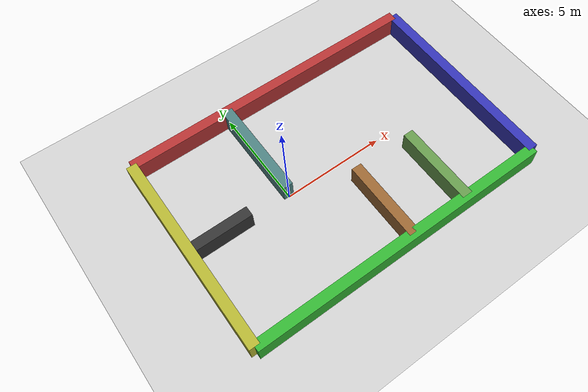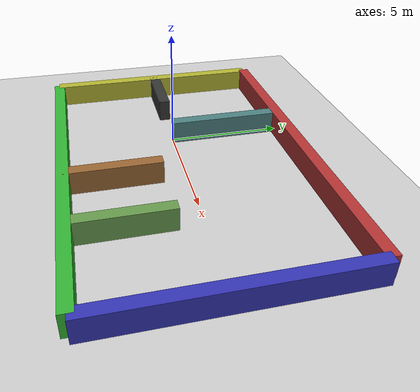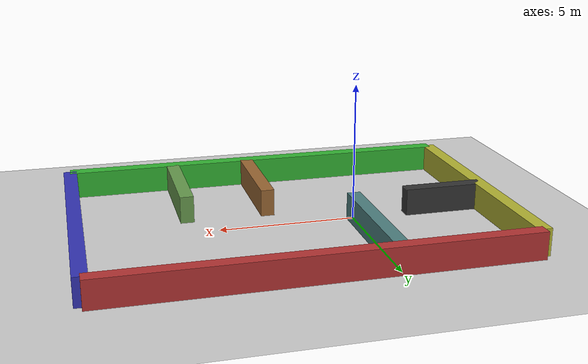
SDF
<?xml version="1.0" ?>
<sdf version="1.8">
  <world name="cwmaze">
    <scene>
      <grid>false</grid>
    </scene>
    <physics name="10ms" type="ignored">
      <max_step_size>0.01</max_step_size>
      <real_time_factor>1.0</real_time_factor>
      <dart>
        <collision_detector>bullet</collision_detector>
      </dart>
    </physics>

    <plugin
      filename="ignition-gazebo-physics-system"
      name="ignition::gazebo::systems::Physics">
    </plugin>
    <plugin
      filename="ignition-gazebo-sensors-system"
      name="ignition::gazebo::systems::Sensors">
      <render_engine>ogre2</render_engine>
    </plugin>
    <plugin
      filename="ignition-gazebo-scene-broadcaster-system"
      name="ignition::gazebo::systems::SceneBroadcaster">
    </plugin>
    <plugin
      filename="ignition-gazebo-user-commands-system"
      name="ignition::gazebo::systems::UserCommands">
    </plugin>

    <!-- imu plugin -->
    <plugin
      filename="libignition-gazebo-imu-system.so"
      name="ignition::gazebo::systems::Imu">
    </plugin>

    <light name="sun" type="directional">
      <cast_shadows>true</cast_shadows>
      <pose>0 0 10 0 0 0</pose>
      <diffuse>0.8 0.8 0.8 1</diffuse>
      <specular>0.2 0.2 0.2 1</specular>
      <attenuation>
        <range>1000</range>
        <constant>0.9</constant>
        <linear>0.01</linear>
        <quadratic>0.001</quadratic>
      </attenuation>
      <direction>-0.5 0.1 -0.9</direction>
    </light>

    <model name='ground_plane'>
      <static>true</static>
      <link name='link'>
        <collision name='collision'>
          <geometry>
            <plane>
              <normal>0 0 1</normal>
              <size>100 100</size>
            </plane>
          </geometry>
        </collision>
        <visual name='visual'>
          <geometry>
            <plane>
              <normal>0 0 1</normal>
              <size>100 100</size>
            </plane>
          </geometry>
          <material>
            <ambient>0.8 0.8 0.8 1</ambient>
            <diffuse>0.8 0.8 0.8 1</diffuse>
            <specular>0.8 0.8 0.8 1</specular>
          </material>
        </visual>
      </link>
      <pose>0 0 0 0 0 0</pose>
    </model>

    <!-- Maze Model -->
    <model name="maze">
      <static>true</static>
      <link name="wall_1">
        <collision name="collision">
          <geometry>
            <box>
              <size>15 0.5 1</size>
            </box>
          </geometry>
        </collision>
        <visual name="visual">
          <geometry>
            <box>
              <size>15 0.5 1</size>
            </box>
          </geometry>
          <material>
            <ambient>0.7 0.2 0.2 1</ambient>
            <diffuse>0.7 0.2 0.2 1</diffuse>
          </material>
        </visual>
        <pose>2.5 5 0.5 0 0 0</pose>
      </link>

      <link name="wall_2">
        <collision name="collision">
          <geometry>
            <box>
              <size>0.5 10 1</size>
            </box>
          </geometry>
        </collision>
        <visual name="visual">
          <geometry>
            <box>
              <size>0.5 10 1</size>
            </box>
          </geometry>
          <material>
            <ambient>0.2 0.2 0.7 1</ambient>
            <diffuse>0.2 0.2 0.7 1</diffuse>
          </material>
        </visual>
        <pose>10 0 0.5 0 0 0</pose>
      </link>

      <link name="wall_3">
        <collision name="collision">
          <geometry>
            <box>
              <size>15 0.5 1</size>
            </box>
          </geometry>
        </collision>
        <visual name="visual">
          <geometry>
            <box>
              <size>15 0.5 1</size>
            </box>
          </geometry>
          <material>
            <ambient>0.2 0.7 0.2 1</ambient>
            <diffuse>0.2 0.7 0.2 1</diffuse>
          </material>
        </visual>
        <pose>2.5 -5 0.5 0 0 0</pose>
      </link>

      <link name="wall_4">
        <collision name="collision">
          <geometry>
            <box>
              <size>0.5 10 1</size>
            </box>
          </geometry>
        </collision>
        <visual name="visual">
          <geometry>
            <box>
              <size>0.5 10 1</size>
            </box>
          </geometry>
          <material>
            <ambient>0.7 0.7 0.2 1</ambient>
            <diffuse>0.7 0.7 0.2 1</diffuse>
          </material>
        </visual>
        <pose>-5 0 0.5 0 0 0</pose>
      </link>

      <!-- Inner walls -->
      <link name="wall_5">
        <collision name="collision">
          <geometry>
            <box>
              <size>0.5 5 1</size>
            </box>
          </geometry>
        </collision>
        <visual name="visual">
          <geometry>
            <box>
              <size>0.5 5 1</size>
            </box>
          </geometry>
          <material>
            <ambient>0.3 0.5 0.5 1</ambient>
            <diffuse>0.3 0.5 0.5 1</diffuse>
          </material>
        </visual>
        <pose>0 2.5 0.5 0 0 0</pose>
      </link>

      <link name="wall_6">
        <collision name="collision">
          <geometry>
            <box>
              <size>0.5 4 1</size>
            </box>
          </geometry>
        </collision>
        <visual name="visual">
          <geometry>
            <box>
              <size>0.5 4 1</size>
            </box>
          </geometry>
          <material>
            <ambient>0.6 0.4 0.2 1</ambient>
            <diffuse>0.6 0.4 0.2 1</diffuse>
          </material>
        </visual>
        <pose>3 -3 0.5 0 0 0</pose>
      </link>

      <link name="wall_7">
        <collision name="collision">
          <geometry>
            <box>
              <size>0.5 4 1</size>
            </box>
          </geometry>
        </collision>
        <visual name="visual">
          <geometry>
            <box>
              <size>0.5 4 1</size>
            </box>
          </geometry>
          <material>
            <ambient>0.4 0.6 0.3 1</ambient>
            <diffuse>0.4 0.6 0.3 1</diffuse>
          </material>
        </visual>
        <pose>6 -3 0.5 0 0 0</pose>
      </link>

      <link name="wall_8">
        <collision name="collision">
          <geometry>
            <box>
              <size>3 0.5 1</size>
            </box>
          </geometry>
        </collision>
        <visual name="visual">
          <geometry>
            <box>
              <size>3 0.5 1</size>
            </box>
          </geometry>
          <material>
            <ambient>0.2 0.2 0.2 1</ambient>
            <diffuse>0.2 0.2 0.2 1</diffuse>
          </material>
        </visual>
        <pose>-3.5 0 0.5 0 0 0</pose>
      </link>
    </model>
  </world>
</sdf>
